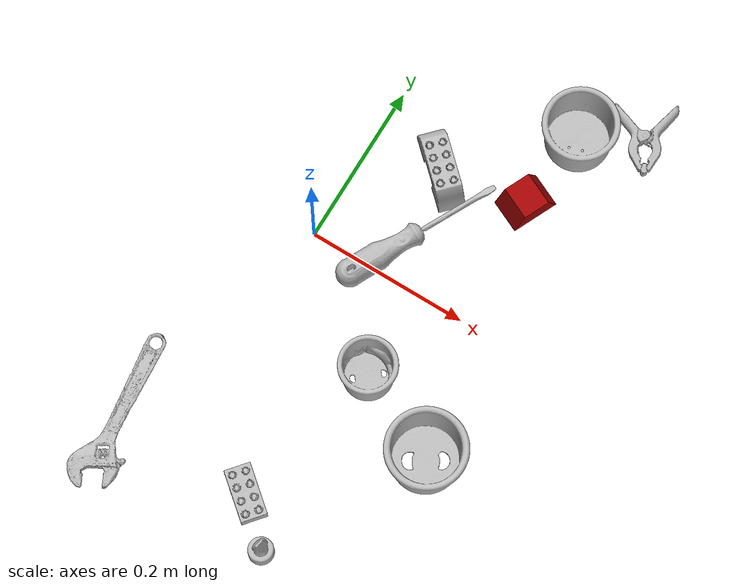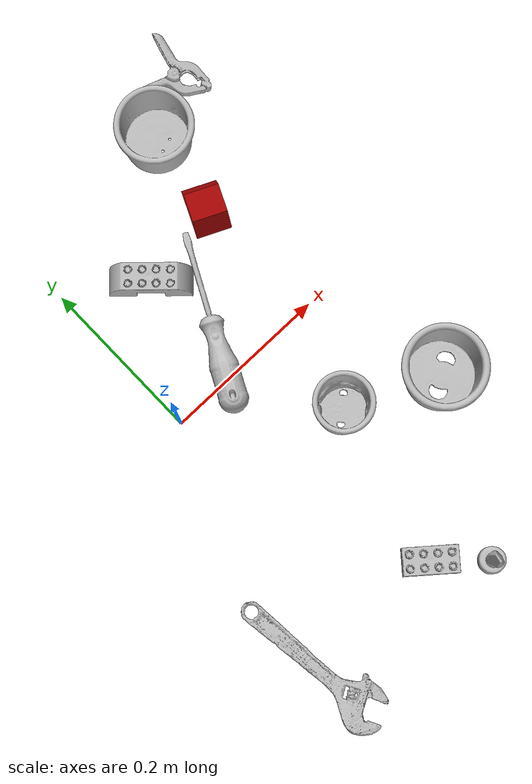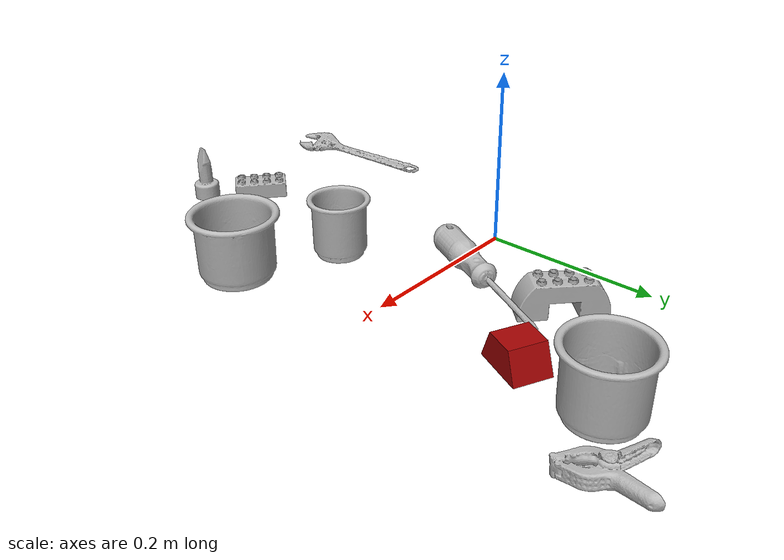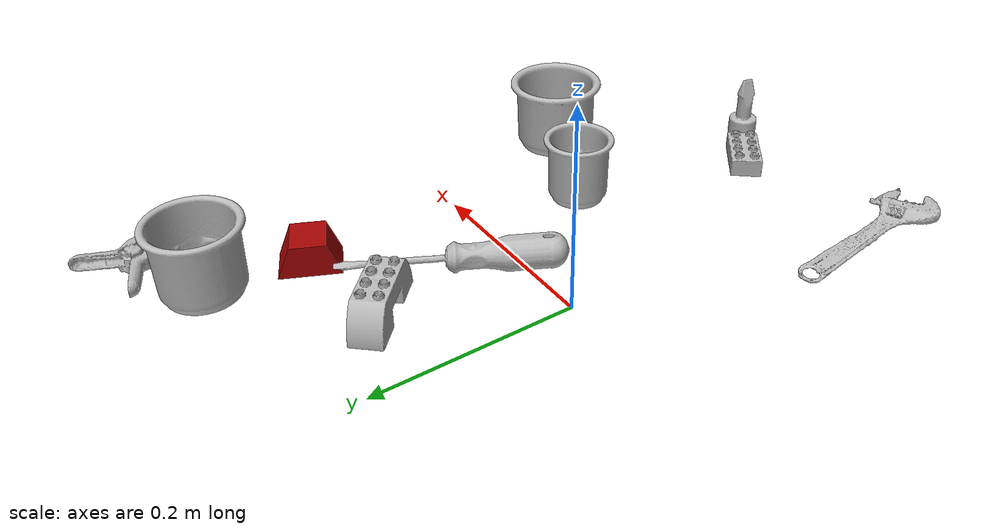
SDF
<sdf version="1.4">
  <world name="default">
    <light name="light1" type="point">
      <pose>0 0 1 0 0 0</pose>
      <diffuse>3 3 3 1</diffuse>
      <specular>3 3 3 1</specular>
    </light>
    <light name="light2" type="point">
      <pose>0 0.5 2 0 0 0</pose>
      <diffuse>1 1 1 1</diffuse>
      <specular>1 1 1 1</specular>
    </light>
    <light name="light3" type="point">
      <pose>0 0.5 2 0 0 0</pose>
      <diffuse>3 3 3 1</diffuse>
      <specular>3 3 3 1</specular>
    </light>
    <scene>
      <ambient>0.7 0.7 0.7</ambient>
    </scene>
    <model name="cup1">
      <link name="link_cup1">
        <collision name="default">
          <geometry>
            <mesh>
              <uri>model://d_cups/collision_meshes/collision.obj</uri>
              <scale>1.0 1.0 1.0</scale>
            </mesh>
          </geometry>
          <surface>
            <friction>
              <ode>
                <mu>0.5</mu>
                <mu2>0.5</mu2>
              </ode>
            </friction>
          <contact>
        <ode>
            <max_vel>0</max_vel>
            <min_depth>0.0001</min_depth>
            <kp>1e8</kp>
        </ode>
    </contact></surface>
        </collision>
        <visual name="default">
          <geometry>
            <mesh>
              <uri>model://d_cups/visual_meshes/visual.dae</uri>
              <scale>1.0 1.0 1.0</scale>
            </mesh>
          </geometry>
        </visual>
        <inertial>
          <mass>0.06783133745193481</mass>
          <pose>0.0008068059105426073 0.0019117397023364902 -0.002266651252284646 0.24012426461604838 -0.24709695541432683 0.5942481546461544</pose>
          <inertia>
            <ixx>5.679078e-05</ixx>
            <iyy>5.662642e-05</iyy>
            <izz>5.1405317e-05</izz>
            <ixy>0</ixy>
            <ixz>0</ixz>
            <iyz>0</iyz>
          </inertia>
        </inertial>
      </link>
      <pose>0.14330828189849854 -0.11353332549333572 0.0346590131521225 2.6320803955984803e-07 -4.4462169734278966e-07 0.1429952138513292</pose>
    </model>
    <model name="cup2">
      <link name="link_cup2">
        <collision name="default">
          <geometry>
            <mesh>
              <uri>model://h_cups/collision_meshes/collision.obj</uri>
              <scale>1.0 1.0 1.0</scale>
            </mesh>
          </geometry>
          <surface>
            <friction>
              <ode>
                <mu>0.5</mu>
                <mu2>0.5</mu2>
              </ode>
            </friction>
          <contact>
        <ode>
            <max_vel>0</max_vel>
            <min_depth>0.0001</min_depth>
            <kp>1e8</kp>
        </ode>
    </contact></surface>
        </collision>
        <visual name="default">
          <geometry>
            <mesh>
              <uri>model://h_cups/visual_meshes/visual.dae</uri>
              <scale>1.0 1.0 1.0</scale>
            </mesh>
          </geometry>
        </visual>
        <inertial>
          <mass>0.0420527309179306</mass>
          <pose>-2.702834171941504e-05 0.0002301869390066713 -0.0018405404407531023 -0.02436231807299455 0.06545237013505961 0.1288477560592675</pose>
          <inertia>
            <ixx>5.430915e-05</ixx>
            <iyy>5.3661057e-05</iyy>
            <izz>5.69554e-05</izz>
            <ixy>0</ixy>
            <ixz>0</ixz>
            <iyz>0</iyz>
          </inertia>
        </inertial>
      </link>
      <pose>0.20528623461723328 0.2579154968261719 0.03775801509618759 -5.8452016560295306e-09 -4.6200399398013756e-09 1.8038745855916274</pose>
    </model>
    <model name="cup3">
      <link name="link_cup3">
        <collision name="default">
          <geometry>
            <mesh>
              <uri>model://i_cups/collision_meshes/collision.obj</uri>
              <scale>1.0 1.0 1.0</scale>
            </mesh>
          </geometry>
          <surface>
            <friction>
              <ode>
                <mu>0.5</mu>
                <mu2>0.5</mu2>
              </ode>
            </friction>
          <contact>
        <ode>
            <max_vel>0</max_vel>
            <min_depth>0.0001</min_depth>
            <kp>1e8</kp>
        </ode>
    </contact></surface>
        </collision>
        <visual name="default">
          <geometry>
            <mesh>
              <uri>model://i_cups/visual_meshes/visual.dae</uri>
              <scale>1.0 1.0 1.0</scale>
            </mesh>
          </geometry>
        </visual>
        <inertial>
          <mass>0.1172947883605957</mass>
          <pose>0.00011240218736929819 0.00016797319403849542 -0.0008579035638831556 -0.028982974239284674 -0.039873277979934216 -0.3459139003356122</pose>
          <inertia>
            <ixx>0.00016239638</ixx>
            <iyy>0.00016382721</iyy>
            <izz>0.00018150422</izz>
            <ixy>0</ixy>
            <ixz>0</ixz>
            <iyz>0</iyz>
          </inertia>
        </inertial>
      </link>
      <pose>0.2506079375743866 -0.16258905827999115 0.037773486226797104 0.00200049361196815 -0.006348686445706805 -2.9017615511746193</pose>
    </model>
    <model name="toy1">
      <link name="link_toy1">
        <collision name="default">
          <geometry>
            <mesh>
              <uri>model://prism/collision_meshes/collision.obj</uri>
              <scale>0.5 0.5 0.5</scale>
            </mesh>
          </geometry>
          <surface>
            <friction>
              <ode>
                <mu>0.5</mu>
                <mu2>0.5</mu2>
              </ode>
            </friction>
          <contact>
        <ode>
            <max_vel>0</max_vel>
            <min_depth>0.0001</min_depth>
            <kp>1e8</kp>
        </ode>
    </contact></surface>
        </collision>
        <visual name="default">
          <geometry>
            <mesh>
              <uri>model://prism/visual_meshes/visual.dae</uri>
              <scale>0.5 0.5 0.5</scale>
            </mesh>
          </geometry>
        </visual>
        <inertial>
          <mass>0.04854338616132736</mass>
          <pose>-4.92679828312248e-05 -2.480786349678965e-07 -0.0016934549203142524 0.0 0.006559181697473799 0.0</pose>
          <inertia>
            <ixx>1.0952453e-05</ixx>
            <iyy>1.3236178e-05</iyy>
            <izz>1.6212734e-05</izz>
            <ixy>0</ixy>
            <ixz>0</ixz>
            <iyz>0</iyz>
          </inertia>
        </inertial>
      </link>
      <pose>0.19144339859485626 0.1616176813840866 0.016085000708699226 -9.76139208352933e-09 -9.238143895182327e-09 -2.00568761649125</pose>
    </model>
    <model name="toy2">
      <link name="link_toy2">
        <collision name="default">
          <geometry>
            <mesh>
              <uri>model://e_toy_airplane/collision_meshes/collision.obj</uri>
              <scale>1.0 1.0 1.0</scale>
            </mesh>
          </geometry>
          <surface>
            <friction>
              <ode>
                <mu>0.5</mu>
                <mu2>0.5</mu2>
              </ode>
            </friction>
          <contact>
        <ode>
            <max_vel>0</max_vel>
            <min_depth>0.0001</min_depth>
            <kp>1e8</kp>
        </ode>
    </contact></surface>
        </collision>
        <visual name="default">
          <geometry>
            <mesh>
              <uri>model://e_toy_airplane/visual_meshes/visual.dae</uri>
              <scale>1.0 1.0 1.0</scale>
            </mesh>
          </geometry>
        </visual>
        <inertial>
          <mass>0.014407381415367126</mass>
          <pose>0.00011740459740394726 -2.2482932763523422e-05 -0.011187206022441387 0.005518488041491648 0.009228285270614433 0.15041380385765837</pose>
          <inertia>
            <ixx>4.397297e-06</ixx>
            <iyy>4.352315e-06</iyy>
            <izz>1.3215607e-06</izz>
            <ixy>0</ixy>
            <ixz>0</ixz>
            <iyz>0</iyz>
          </inertia>
        </inertial>
      </link>
      <pose>0.14591862261295319 -0.35167697072029114 0.03321255370974541 -7.209906374772702e-06 -0.00030398750132347175 -0.31363975691937845</pose>
    </model>
    <model name="toy3">
      <link name="link_toy3">
        <collision name="default">
          <geometry>
            <mesh>
              <uri>model://e_lego_duplo/collision_meshes/collision.obj</uri>
              <scale>1.0 1.0 1.0</scale>
            </mesh>
          </geometry>
          <surface>
            <friction>
              <ode>
                <mu>0.5</mu>
                <mu2>0.5</mu2>
              </ode>
            </friction>
          <contact>
        <ode>
            <max_vel>0</max_vel>
            <min_depth>0.0001</min_depth>
            <kp>1e8</kp>
        </ode>
    </contact></surface>
        </collision>
        <visual name="default">
          <geometry>
            <mesh>
              <uri>model://e_lego_duplo/visual_meshes/visual.dae</uri>
              <scale>1.0 1.0 1.0</scale>
            </mesh>
          </geometry>
        </visual>
        <inertial>
          <mass>0.059077512472867966</mass>
          <pose>0.00032560460385866463 0.0002348544221604243 0.0019521447829902172 -0.0225678114641467 -6.824730634042773e-05 -0.007625154901652298</pose>
          <inertia>
            <ixx>1.2319611e-05</ixx>
            <iyy>5.0562856e-05</iyy>
            <izz>4.923807e-05</izz>
            <ixy>0</ixy>
            <ixz>0</ixz>
            <iyz>0</iyz>
          </inertia>
        </inertial>
      </link>
      <pose>0.08678732812404633 0.14228996634483337 0.021809013560414314 -1.085381246719731e-06 -3.267071158726228e-06 -0.7497492791078896</pose>
    </model>
    <model name="toy4">
      <link name="link_toy4">
        <collision name="default">
          <geometry>
            <mesh>
              <uri>model://c_lego_duplo/collision_meshes/collision.obj</uri>
              <scale>1.0 1.0 1.0</scale>
            </mesh>
          </geometry>
          <surface>
            <friction>
              <ode>
                <mu>0.5</mu>
                <mu2>0.5</mu2>
              </ode>
            </friction>
          <contact>
        <ode>
            <max_vel>0</max_vel>
            <min_depth>0.0001</min_depth>
            <kp>1e8</kp>
        </ode>
    </contact></surface>
        </collision>
        <visual name="default">
          <geometry>
            <mesh>
              <uri>model://c_lego_duplo/visual_meshes/visual.dae</uri>
              <scale>1.0 1.0 1.0</scale>
            </mesh>
          </geometry>
        </visual>
        <inertial>
          <mass>0.019630447030067444</mass>
          <pose>0.000316459103487432 0.00019464583601802588 0.0010453149443492293 -0.011520787241280632 0.0059000791517924015 0.031100331826339908</pose>
          <inertia>
            <ixx>7.554163e-06</ixx>
            <iyy>2.4130718e-06</iyy>
            <izz>8.827816e-06</izz>
            <ixy>0</ixy>
            <ixz>0</ixz>
            <iyz>0</iyz>
          </inertia>
        </inertial>
      </link>
      <pose>0.09611933678388596 -0.3048238754272461 0.011981483548879623 0.008018681782857456 -0.0020907653534549962 0.8532229579167719</pose>
    </model>
    <model name="hardware1">
      <link name="link_hardware1">
        <collision name="default">
          <geometry>
            <mesh>
              <uri>model://flat_screwdriver/collision_meshes/collision.obj</uri>
              <scale>1.0 1.0 1.0</scale>
            </mesh>
          </geometry>
          <surface>
            <friction>
              <ode>
                <mu>0.5</mu>
                <mu2>0.5</mu2>
              </ode>
            </friction>
          <contact>
        <ode>
            <max_vel>0</max_vel>
            <min_depth>0.0001</min_depth>
            <kp>1e8</kp>
        </ode>
    </contact></surface>
        </collision>
        <visual name="default">
          <geometry>
            <mesh>
              <uri>model://flat_screwdriver/visual_meshes/visual.dae</uri>
              <scale>1.0 1.0 1.0</scale>
            </mesh>
          </geometry>
        </visual>
        <inertial>
          <mass>0.05795019492506981</mass>
          <pose>-0.0489187128841877 -0.0006576800369657576 -0.0006140916375443339 -0.5616548332173045 -0.0032337243504420286 0.0069822829580931615</pose>
          <inertia>
            <ixx>6.846775e-06</ixx>
            <iyy>8.6921296e-05</iyy>
            <izz>8.688106e-05</izz>
            <ixy>0</ixy>
            <ixz>0</ixz>
            <iyz>0</iyz>
          </inertia>
        </inertial>
      </link>
      <pose>0.10221076756715775 0.05835064873099327 0.017175931483507156 -0.21438846805268624 0.004941011451814962 1.0898760557615608</pose>
    </model>
    <model name="hardware2">
      <link name="link_hardware2">
        <collision name="default">
          <geometry>
            <mesh>
              <uri>model://medium_clamp/collision_meshes/collision.obj</uri>
              <scale>1.0 1.0 1.0</scale>
            </mesh>
          </geometry>
          <surface>
            <friction>
              <ode>
                <mu>0.5</mu>
                <mu2>0.5</mu2>
              </ode>
            </friction>
          <contact>
        <ode>
            <max_vel>0</max_vel>
            <min_depth>0.0001</min_depth>
            <kp>1e8</kp>
        </ode>
    </contact></surface>
        </collision>
        <visual name="default">
          <geometry>
            <mesh>
              <uri>model://medium_clamp/visual_meshes/visual.dae</uri>
              <scale>1.0 1.0 1.0</scale>
            </mesh>
          </geometry>
        </visual>
        <inertial>
          <mass>0.028340468183159828</mass>
          <pose>0.0053909942507743835 0.0003953247796744108 -0.0001222157443407923 -0.001226920261124021 0.0025845025680982987 0.03820769890719856</pose>
          <inertia>
            <ixx>7.720961e-06</ixx>
            <iyy>1.1236185e-05</iyy>
            <izz>1.7307093e-05</izz>
            <ixy>0</ixy>
            <ixz>0</ixz>
            <iyz>0</iyz>
          </inertia>
        </inertial>
      </link>
      <pose>0.2710914611816406 0.3012314736843109 0.013533118180930614 0.07731672223711629 0.08539314219663172 -1.0821309025242838</pose>
    </model>
    <model name="hardware3">
      <link name="link_hardware3">
        <collision name="default">
          <geometry>
            <mesh>
              <uri>model://adjustable_wrench/collision_meshes/collision.obj</uri>
              <scale>1.0 1.0 1.0</scale>
            </mesh>
          </geometry>
          <surface>
            <friction>
              <ode>
                <mu>0.5</mu>
                <mu2>0.5</mu2>
              </ode>
            </friction>
          <contact>
        <ode>
            <max_vel>0</max_vel>
            <min_depth>0.0001</min_depth>
            <kp>1e8</kp>
        </ode>
    </contact></surface>
        </collision>
        <visual name="default">
          <geometry>
            <mesh>
              <uri>model://adjustable_wrench/visual_meshes/visual.dae</uri>
              <scale>1.0 1.0 1.0</scale>
            </mesh>
          </geometry>
        </visual>
        <inertial>
          <mass>0.023935195058584213</mass>
          <pose>0.03740980476140976 -0.0028968877159059048 -0.001114922808483243 -0.014473210185193002 0.006656019736435525 -0.010954188403863873</pose>
          <inertia>
            <ixx>4.898683e-06</ixx>
            <iyy>5.733333e-05</iyy>
            <izz>6.197185e-05</izz>
            <ixy>0</ixy>
            <ixz>0</ixz>
            <iyz>0</iyz>
          </inertia>
        </inertial>
      </link>
      <pose>-0.07531361281871796 -0.30073994398117065 0.00612503569573164 0.04675913244553454 -0.02927062675789868 -1.4778692815413141</pose>
    </model>
  <physics type="ode">
      <max_contacts>50</max_contacts>
      <ode>
        <solver>
          <type>quick</type>
          <iters>75</iters>
        </solver>
        <constraints>
          <contact_max_correcting_vel>0</contact_max_correcting_vel>
          <contact_surface_layer>0</contact_surface_layer>
        </constraints>
      </ode>
    </physics></world>
</sdf>
